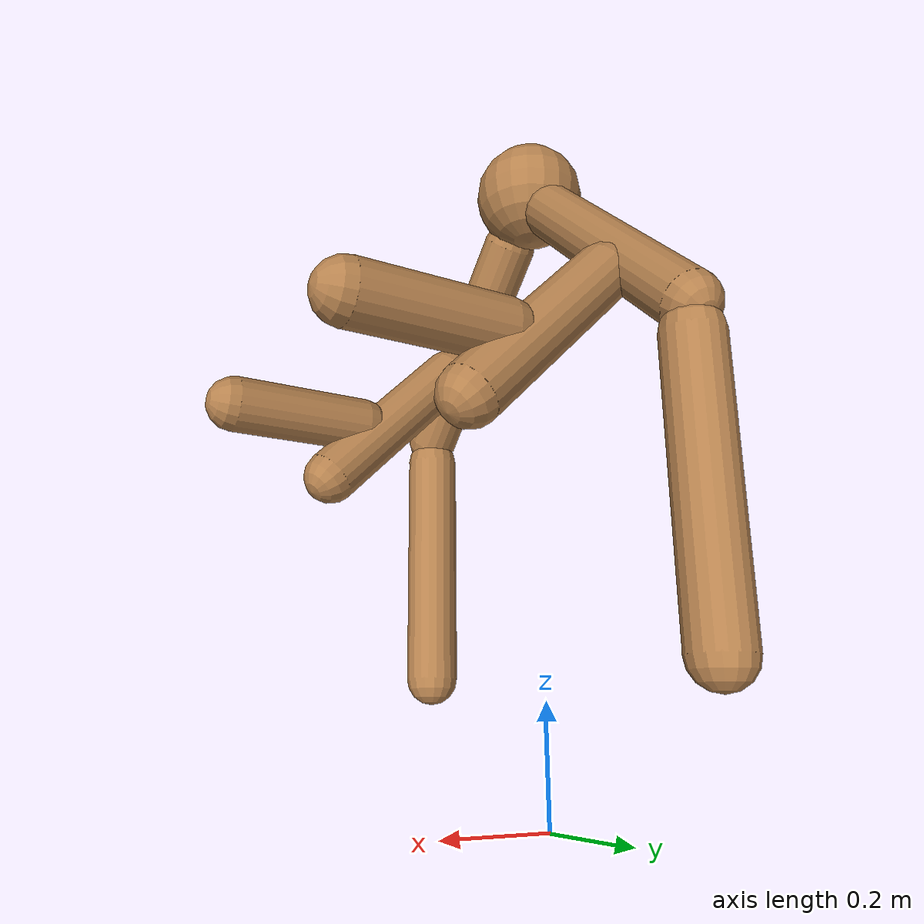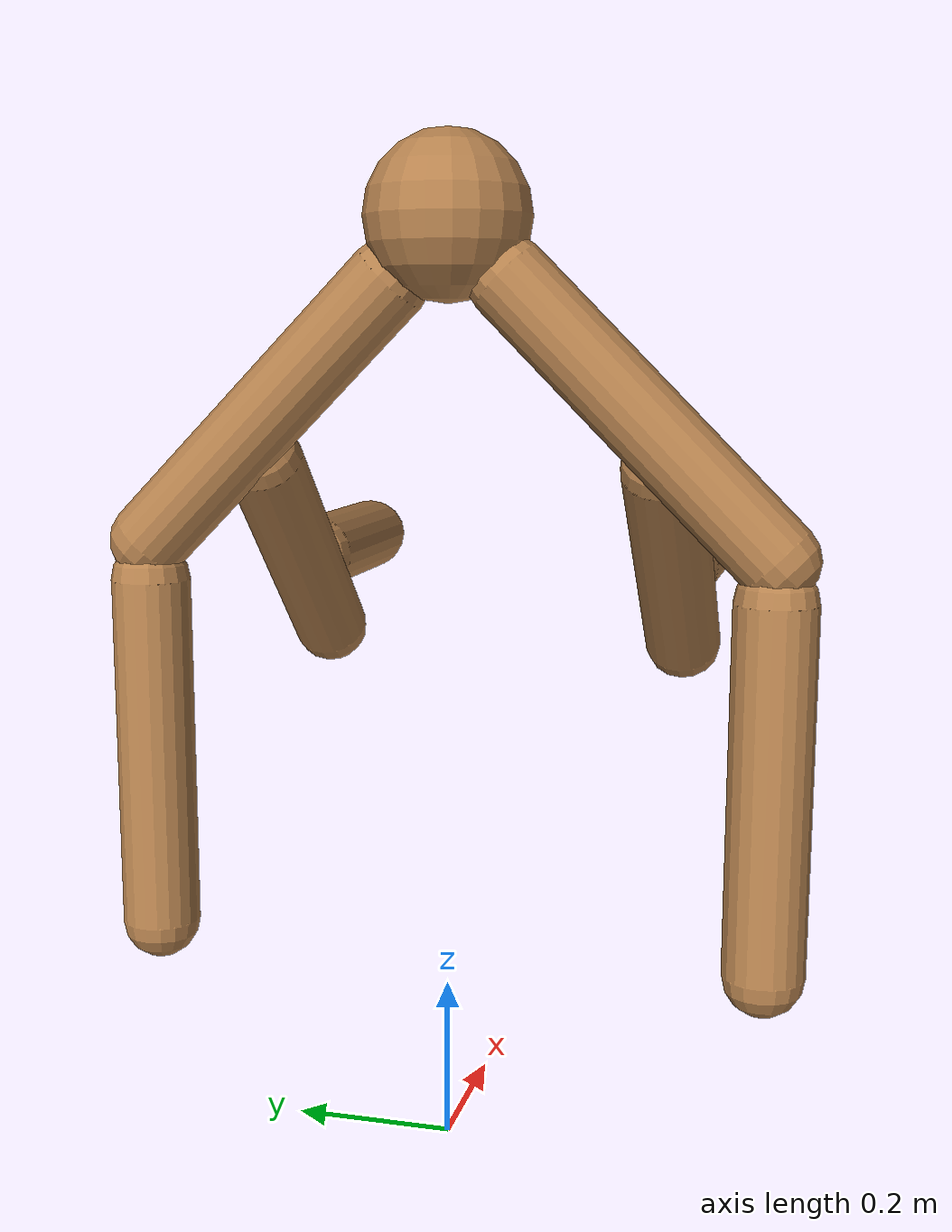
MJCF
<?xml version='1.0' encoding='UTF-8'?>
<!-- Universal Animal Template: unimal -->
<mujoco model="unimal">
  <compiler angle="degree"/>
  <size njmax="2000" nconmax="500"/>
  <option timestep=".005">
    <flag filterparent="disable"/>
  </option>
  <!-- Common defaults to make search space tractable -->
  <default>
    <!-- Define motor defaults -->
    <motor ctrlrange="-1 1" ctrllimited="true"/>
    <!-- Define joint defaults -->
    <default class="normal_joint">
      <joint type="hinge" damping="1" stiffness="1" armature="1" limited="true" range="-120 120" solimplimit="0 0.99 0.01"/>
    </default>
    <default class="walker_joint">
      <joint type="hinge" damping="0.2" stiffness="1" armature=".01" limited="true" range="-120 120" solimplimit="0 0.99 0.01"/>
    </default>
    <default class="stiff_joint">
      <joint type="hinge" damping="5" stiffness="10" armature=".01" limited="true" solimplimit="0 0.99 0.01"/>
    </default>
    <default class="free">
      <joint limited="false" damping="0" armature="0" stiffness="0"/>
    </default>
    <default class="growth_site">
      <site size="1e-6 1e-6 1e-6"/>
    </default>
    <default class="torso_growth_site">
      <site size="1e-6 1e-6 1e-6"/>
    </default>
    <default class="mirror_growth_site">
      <site size="1e-6 1e-6 1e-6"/>
    </default>
    <default class="btm_pos_site">
      <site size="1e-6 1e-6 1e-6"/>
    </default>
    <default class="box_face_site">
      <site size="1e-6 1e-6 1e-6"/>
    </default>
    <default class="imu_vel">
      <site type="box" size="0.05" rgba="1 0 0 0"/>
    </default>
    <default class="touch_site">
      <site group="3" rgba="0 0 1 .3"/>
    </default>
    <default class="food_site">
      <site material="food" size="0.15"/>
    </default>
    <!-- Define geom defaults -->
    <geom type="capsule" condim="3" friction="0.7 0.1 0.1" material="self"/>
  </default>
  <worldbody>
    <light diffuse="1 1 1" directional="true" exponent="1" pos="0 0 8" specular="0.1 0.1 0.1" dir="0 0 -1"/>
    <!-- Programatically generated xml goes here -->
    <body name="torso/0" pos="0 0 1.14">
      <joint name="root" type="free" class="free"/>
      <site name="root" class="imu_vel"/>
      <geom name="torso/0" type="sphere" size="0.1" condim="3" density="500"/>
      <camera name="side" pos="0 -7 2" xyaxes="1 0 0 0 1 2" mode="trackcom"/>
      <site name="torso/0" class="growth_site" pos="0 0 0"/>
      <site name="torso/btm_pos/0" class="btm_pos_site" pos="0 0 -0.1"/>
      <site name="torso/touch/0" class="touch_site" size="0.11"/>
      <site name="torso/vertical/0" class="torso_growth_site" pos="0 0 -0.1"/>
      <body name="limb/0" pos="0.0 0.07 -0.07">
        <joint name="limbx/0" type="hinge" class="normal_joint" range="0 90" pos="0.0 -0.04 0.04" axis="1.0 0.0 0.0"/>
        <joint name="limby/0" type="hinge" class="normal_joint" range="-30 0" pos="0.0 -0.04 0.04" axis="0.0 0.7071 0.7071"/>
        <geom name="limb/0" type="capsule" fromto="0.0 0.0 0.0 0.0 0.32 -0.32" size="0.05" density="800"/>
        <site name="limb/mid/0" class="mirror_growth_site" pos="0.0 0.18 -0.18"/>
        <site name="limb/btm/0" class="mirror_growth_site" pos="0.0 0.32 -0.32"/>
        <site name="limb/btm_pos/0" class="btm_pos_site" pos="0.0 0.32 -0.32"/>
        <site name="limb/touch/0" class="touch_site" size="0.060000000000000005" fromto="0.0 0.0 0.0 0.0 0.32 -0.32" type="capsule"/>
        <body name="limb/21" pos="0.04 0.18 -0.22">
          <joint name="limby/21" type="hinge" class="normal_joint" range="-30 60" pos="-0.04 0.0 0.04" axis="-0.0 1.0 0.0"/>
          <geom name="limb/21" type="capsule" fromto="0.0 0.0 0.0 0.25 0.0 -0.25" size="0.05" density="800"/>
          <site name="limb/mid/21" class="mirror_growth_site" pos="0.14 0.0 -0.14"/>
          <site name="limb/btm/21" class="mirror_growth_site" pos="0.25 0.0 -0.25"/>
          <site name="limb/btm_pos/21" class="btm_pos_site" pos="0.25 0.0 -0.25"/>
          <site name="limb/touch/21" class="touch_site" size="0.060000000000000005" fromto="0.0 0.0 0.0 0.25 0.0 -0.25" type="capsule"/>
          <body name="limb/27" pos="0.19 0.0 -0.14">
            <joint name="limby/27" type="hinge" class="normal_joint" range="0 60" pos="-0.05 0.0 0.0" axis="-0.0 1.0 0.0"/>
            <geom name="limb/27" type="capsule" fromto="0.0 0.0 0.0 0.25 0.0 0.0" size="0.05" density="800"/>
            <site name="limb/mid/27" class="mirror_growth_site" pos="0.15 0.0 0.0"/>
            <site name="limb/btm/27" class="mirror_growth_site" pos="0.25 0.0 0.0"/>
            <site name="limb/btm_pos/27" class="btm_pos_site" pos="0.3 0.0 0.0"/>
            <site name="limb/touch/27" class="touch_site" size="0.060000000000000005" fromto="0.0 0.0 0.0 0.25 0.0 0.0" type="capsule"/>
          </body>
        </body>
        <body name="limb/25" pos="0.0 0.32 -0.37">
          <joint name="limbx/25" type="hinge" class="normal_joint" range="-45 0" pos="0.0 0.0 0.05" axis="1.0 0.0 0.0"/>
          <joint name="limby/25" type="hinge" class="normal_joint" range="-60 30" pos="0.0 0.0 0.05" axis="0.0 1.0 0.0"/>
          <geom name="limb/25" type="capsule" fromto="0.0 0.0 0.0 0.0 0.0 -0.45" size="0.05" density="800"/>
          <site name="limb/mid/25" class="mirror_growth_site" pos="0.0 0.0 -0.25"/>
          <site name="limb/btm/25" class="mirror_growth_site" pos="0.0 0.0 -0.45"/>
          <site name="limb/btm_pos/25" class="btm_pos_site" pos="0.0 0.0 -0.5"/>
          <site name="limb/touch/25" class="touch_site" size="0.060000000000000005" fromto="0.0 0.0 0.0 0.0 0.0 -0.45" type="capsule"/>
        </body>
      </body>
      <body name="limb/1" pos="0.0 -0.07 -0.07">
        <joint name="limbx/1" type="hinge" class="normal_joint" range="0 90" pos="0.0 0.04 0.04" axis="1.0 0.0 -0.0"/>
        <joint name="limby/1" type="hinge" class="normal_joint" range="-30 0" pos="0.0 0.04 0.04" axis="-0.0 0.7071 -0.7071"/>
        <geom name="limb/1" type="capsule" fromto="0.0 0.0 0.0 0.0 -0.32 -0.32" size="0.05" density="800"/>
        <site name="limb/mid/1" class="mirror_growth_site" pos="0.0 -0.18 -0.18"/>
        <site name="limb/btm/1" class="mirror_growth_site" pos="0.0 -0.32 -0.32"/>
        <site name="limb/btm_pos/1" class="btm_pos_site" pos="0.0 -0.32 -0.32"/>
        <site name="limb/touch/1" class="touch_site" size="0.060000000000000005" fromto="0.0 0.0 0.0 0.0 -0.32 -0.32" type="capsule"/>
        <body name="limb/22" pos="0.04 -0.18 -0.22">
          <joint name="limby/22" type="hinge" class="normal_joint" range="-30 60" pos="-0.04 0.0 0.04" axis="-0.0 1.0 0.0"/>
          <geom name="limb/22" type="capsule" fromto="0.0 0.0 0.0 0.25 0.0 -0.25" size="0.05" density="800"/>
          <site name="limb/mid/22" class="mirror_growth_site" pos="0.14 0.0 -0.14"/>
          <site name="limb/btm/22" class="mirror_growth_site" pos="0.25 0.0 -0.25"/>
          <site name="limb/btm_pos/22" class="btm_pos_site" pos="0.25 0.0 -0.25"/>
          <site name="limb/touch/22" class="touch_site" size="0.060000000000000005" fromto="0.0 0.0 0.0 0.25 0.0 -0.25" type="capsule"/>
          <body name="limb/28" pos="0.19 0.0 -0.14">
            <joint name="limby/28" type="hinge" class="normal_joint" range="0 60" pos="-0.05 0.0 0.0" axis="-0.0 1.0 0.0"/>
            <geom name="limb/28" type="capsule" fromto="0.0 0.0 0.0 0.25 0.0 0.0" size="0.05" density="800"/>
            <site name="limb/mid/28" class="mirror_growth_site" pos="0.15 0.0 0.0"/>
            <site name="limb/btm/28" class="mirror_growth_site" pos="0.25 0.0 0.0"/>
            <site name="limb/btm_pos/28" class="btm_pos_site" pos="0.3 0.0 0.0"/>
            <site name="limb/touch/28" class="touch_site" size="0.060000000000000005" fromto="0.0 0.0 0.0 0.25 0.0 0.0" type="capsule"/>
          </body>
        </body>
        <body name="limb/26" pos="0.0 -0.32 -0.37">
          <joint name="limbx/26" type="hinge" class="normal_joint" range="-45 0" pos="0.0 0.0 0.05" axis="1.0 0.0 0.0"/>
          <joint name="limby/26" type="hinge" class="normal_joint" range="-60 30" pos="0.0 0.0 0.05" axis="0.0 1.0 0.0"/>
          <geom name="limb/26" type="capsule" fromto="0.0 0.0 0.0 0.0 0.0 -0.45" size="0.05" density="800"/>
          <site name="limb/mid/26" class="mirror_growth_site" pos="0.0 0.0 -0.25"/>
          <site name="limb/btm/26" class="mirror_growth_site" pos="0.0 0.0 -0.45"/>
          <site name="limb/btm_pos/26" class="btm_pos_site" pos="0.0 0.0 -0.5"/>
          <site name="limb/touch/26" class="touch_site" size="0.060000000000000005" fromto="0.0 0.0 0.0 0.0 0.0 -0.45" type="capsule"/>
        </body>
      </body>
    </body>
  </worldbody>
  <actuator>
    <motor joint="limbx/0" gear="300" name="limbx/0"/>
    <motor joint="limby/0" gear="200" name="limby/0"/>
    <motor joint="limby/21" gear="250" name="limby/21"/>
    <motor joint="limby/27" gear="200" name="limby/27"/>
    <motor joint="limbx/25" gear="150" name="limbx/25"/>
    <motor joint="limby/25" gear="150" name="limby/25"/>
    <motor joint="limbx/1" gear="300" name="limbx/1"/>
    <motor joint="limby/1" gear="200" name="limby/1"/>
    <motor joint="limby/22" gear="250" name="limby/22"/>
    <motor joint="limby/28" gear="200" name="limby/28"/>
    <motor joint="limbx/26" gear="150" name="limbx/26"/>
    <motor joint="limby/26" gear="150" name="limby/26"/>
  </actuator>
  <sensor>
    <accelerometer name="torso_accel" site="root"/>
    <gyro name="torso_gyro" site="root"/>
    <velocimeter name="torso_vel" site="root"/>
    <subtreeangmom name="unimal_am" body="torso/0"/>
    <touch name="torso/0" site="torso/touch/0"/>
    <touch name="limb/0" site="limb/touch/0"/>
    <touch name="limb/21" site="limb/touch/21"/>
    <touch name="limb/27" site="limb/touch/27"/>
    <touch name="limb/25" site="limb/touch/25"/>
    <touch name="limb/1" site="limb/touch/1"/>
    <touch name="limb/22" site="limb/touch/22"/>
    <touch name="limb/28" site="limb/touch/28"/>
    <touch name="limb/26" site="limb/touch/26"/>
  </sensor>
  <!-- Add hfield assets -->
  <asset/>
  <!-- List of contacts to exclude -->
  <contact/>
  <!-- Define material, texture etc -->
  <asset>
    <material name="grid" texture="grid" texrepeat="1 1" texuniform="true" reflectance="0.1"/>
    <material name="hfield" texture="hfield" texrepeat="1 1" texuniform="true" reflectance="0.1"/>
    <material name="wall" texture="wall" texrepeat="1 1" texuniform="true" reflectance=".5"/>
    <material name="platform" texture="platform" texrepeat="1 1" texuniform="true" reflectance=".5"/>
    <material name="boundary" texture="boundary" texrepeat="1 1" texuniform="true" reflectance=".5"/>
    <material name="jump" texture="jump" texrepeat="1 1" texuniform="true" reflectance=".5"/>
    <material name="goal" rgba="1 0 0 1"/>
    <material name="food" rgba="0 0 1 1" emission="1"/>
    <material name="init_position" rgba="0 1 0 0.7"/>
    <material name="self" rgba=".7 .5 .3 1"/>
    <material name="self_invisible" rgba=".7 .5 .3 0"/>
    <material name="self_default" rgba=".7 .5 .3 1"/>
    <material name="self_highlight" rgba="0 .5 .3 1"/>
    <material name="effector" rgba=".7 .4 .2 1"/>
    <material name="effector_default" rgba=".7 .4 .2 1"/>
    <material name="effector_highlight" rgba="0 .5 .3 1"/>
    <material name="decoration" rgba=".3 .5 .7 1"/>
    <material name="eye" rgba="0 .2 1 1"/>
    <material name="target" rgba=".6 .3 .3 1"/>
    <material name="target_default" rgba=".6 .3 .3 1"/>
    <material name="target_highlight" rgba=".6 .3 .3 .4"/>
    <material name="site" rgba=".5 .5 .5 .3"/>
    <material name="ball" texture="ball"/>
  </asset>
  <asset>
    <texture name="grid" type="2d" builtin="checker" rgb1="0.4 0.4 0.4" rgb2="0.4 0.4 0.4" width="300" height="300" mark="edge" markrgb="0.2 0.2 0.2"/>
    <texture name="hfield" type="2d" builtin="checker" rgb1="0.4 0.4 0.4" rgb2="0.4 0.4 0.4" width="300" height="300" mark="edge" markrgb="0.2 0.2 0.2"/>
    <texture name="wall" type="2d" builtin="flat" rgb1="0.9 0.7 0" rgb2="0.9 0.7 0" width="300" height="300"/>
    <texture name="platform" type="2d" builtin="flat" rgb1="0.3 0 0.8" rgb2="0.3 0 0.8" width="300" height="300"/>
    <texture name="boundary" type="2d" builtin="flat" rgb1="0.3 0.3 0.3" rgb2="0.3 0.3 0.3" width="300" height="300"/>
    <texture name="jump" type="2d" builtin="flat" rgb1="0.3 0.3 0.3" rgb2="0.3 0.3 0.3" width="300" height="300"/>
    <texture name="skybox" type="skybox" builtin="gradient" rgb1="1 1 1" rgb2="0.6 0.6 0.6" width="800" height="800"/>
    <texture name="ball" builtin="checker" mark="cross" width="151" height="151" rgb1="0.1 0.1 0.1" rgb2="0.9 0.9 0.9" markrgb="1 1 1"/>
  </asset>
  <visual>
    <headlight ambient="0.6 0.6 0.6" diffuse="0.3 0.3 0.3" specular="0 0 0"/>
    <map znear=".01" shadowclip="0.5"/>
    <quality shadowsize="16384"/>
  </visual>
</mujoco>
